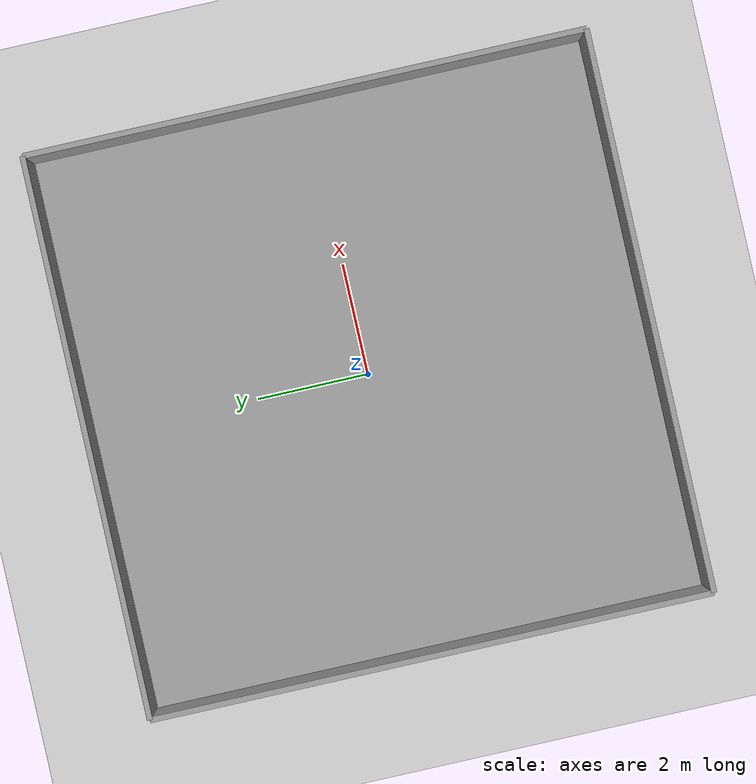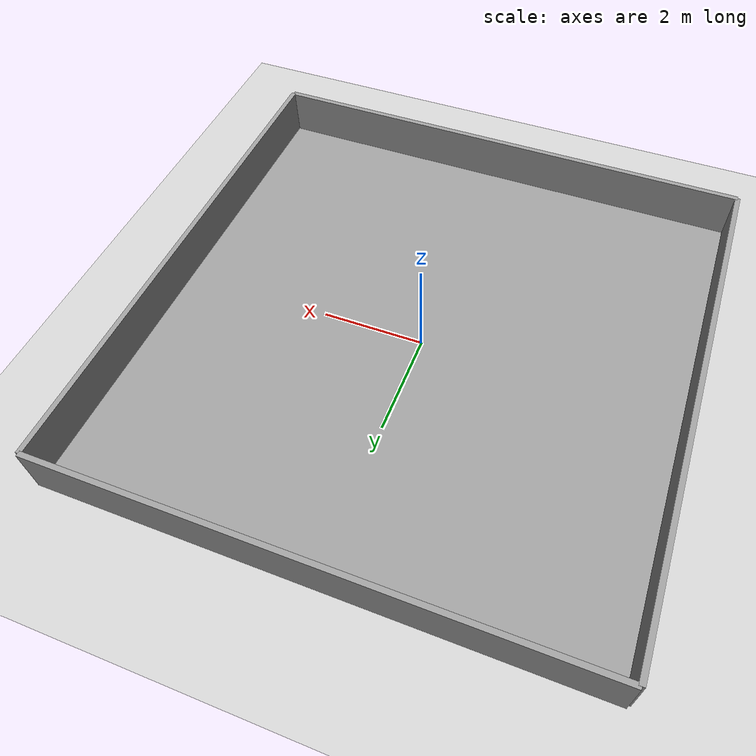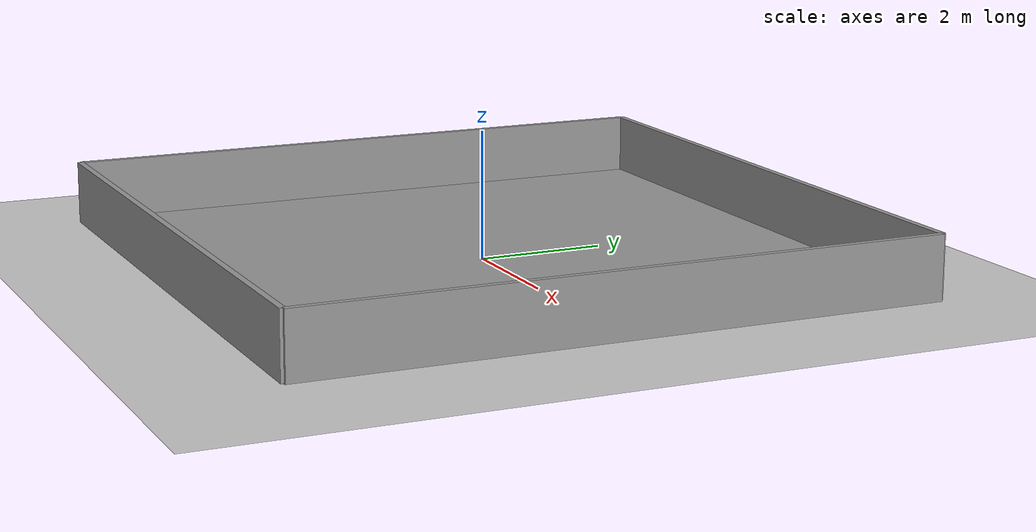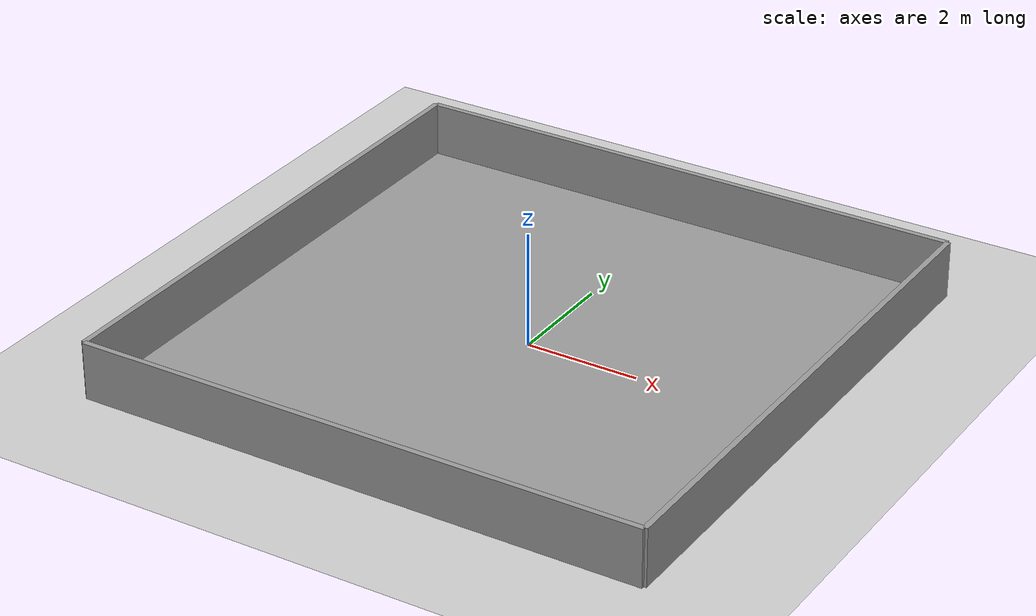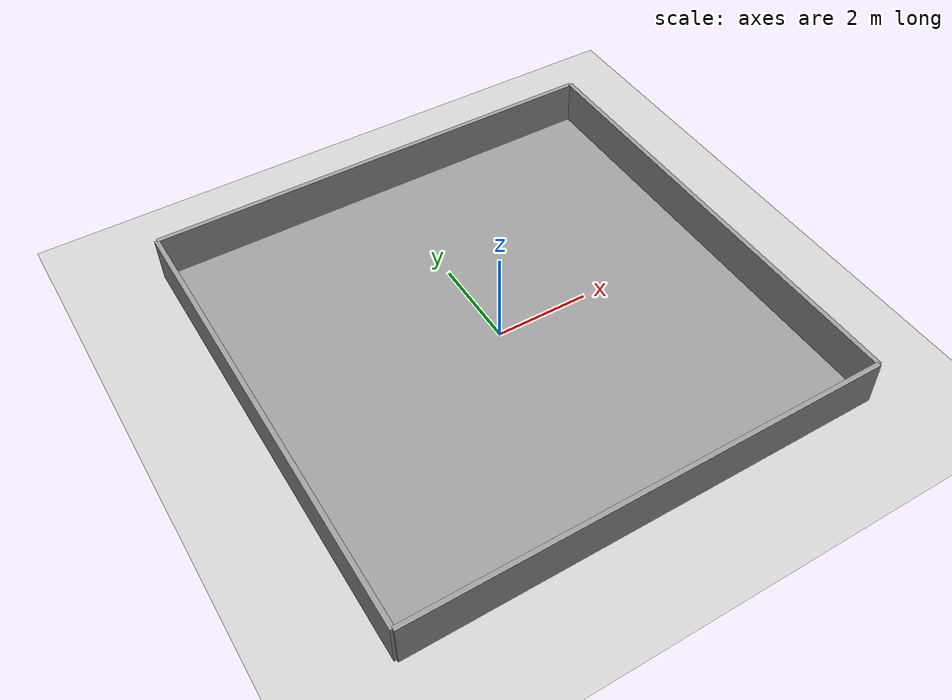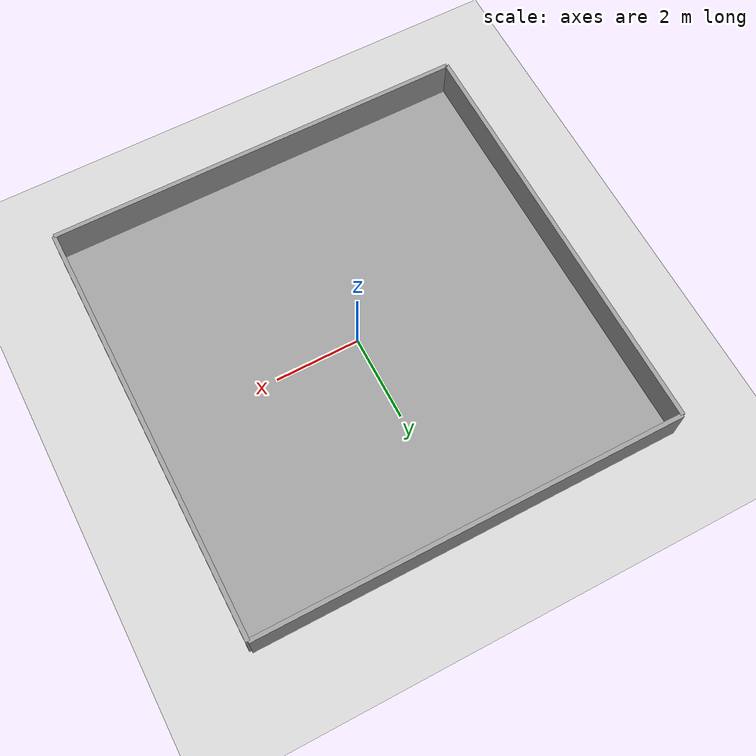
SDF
<?xml version="1.0" ?>
<sdf version="1.10">
  <world name="rectangular_world">
    <!-- Include Gazebo default plugins -->
    <include>
      <uri>model://ground_plane</uri>
    </include>
    <include>
      <uri>model://sun</uri>
    </include>

    <!-- Ground plane -->
    <model name="ground_plane">
      <static>true</static>
      <link name="link">
        <collision name="collision">
          <geometry>
            <box>
              <size>10 10 0.1</size>
            </box>
          </geometry>
        </collision>
        <visual name="visual">
          <geometry>
            <box>
              <size>10 10 0.1</size>
            </box>
          </geometry>
          <material>
            <script>
              <uri>file://media/materials/scripts/gazebo.material</uri>
              <name>Gazebo/Grey</name>
            </script>
          </material>
        </visual>
      </link>
    </model>

    <!-- North Wall -->
    <model name="north_wall">
      <static>true</static>
      <link name="link">
        <pose>0 5 0.5 0 0 0</pose>
        <collision name="collision">
          <geometry>
            <box>
              <size>10 0.1 1</size>
            </box>
          </geometry>
        </collision>
        <visual name="visual">
          <geometry>
            <box>
              <size>10 0.1 1</size>
            </box>
          </geometry>
          <material>
            <script>
              <uri>file://media/materials/scripts/gazebo.material</uri>
              <name>Gazebo/Gray</name>
            </script>
          </material>
        </visual>
      </link>
    </model>

    <!-- South Wall -->
    <model name="south_wall">
      <static>true</static>
      <link name="link">
        <pose>0 -5 0.5 0 0 0</pose>
        <collision name="collision">
          <geometry>
            <box>
              <size>10 0.1 1</size>
            </box>
          </geometry>
        </collision>
        <visual name="visual">
          <geometry>
            <box>
              <size>10 0.1 1</size>
            </box>
          </geometry>
          <material>
            <script>
              <uri>file://media/materials/scripts/gazebo.material</uri>
              <name>Gazebo/Gray</name>
            </script>
          </material>
        </visual>
      </link>
    </model>

    <!-- East Wall -->
    <model name="east_wall">
      <static>true</static>
      <link name="link">
        <pose>5 0 0.5 0 0 0</pose>
        <collision name="collision">
          <geometry>
            <box>
              <size>0.1 10 1</size>
            </box>
          </geometry>
        </collision>
        <visual name="visual">
          <geometry>
            <box>
              <size>0.1 10 1</size>
            </box>
          </geometry>
          <material>
            <script>
              <uri>file://media/materials/scripts/gazebo.material</uri>
              <name>Gazebo/Gray</name>
            </script>
          </material>
        </visual>
      </link>
    </model>

    <!-- West Wall -->
    <model name="west_wall">
      <static>true</static>
      <link name="link">
        <pose>-5 0 0.5 0 0 0</pose>
        <collision name="collision">
          <geometry>
            <box>
              <size>0.1 10 1</size>
            </box>
          </geometry>
        </collision>
        <visual name="visual">
          <geometry>
            <box>
              <size>0.1 10 1</size>
            </box>
          </geometry>
          <material>
            <script>
              <uri>file://media/materials/scripts/gazebo.material</uri>
              <name>Gazebo/Gray</name>
            </script>
          </material>
        </visual>
      </link>
    </model>
  </world>
</sdf>
